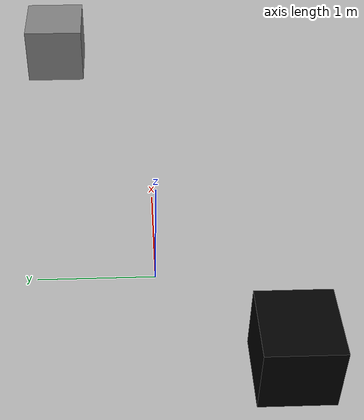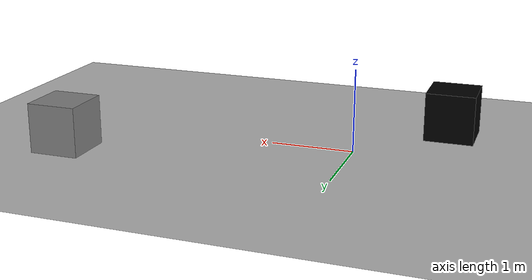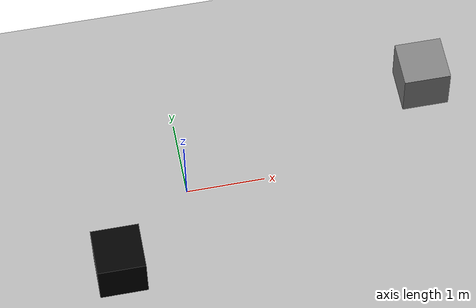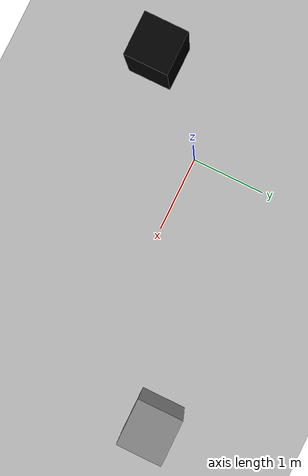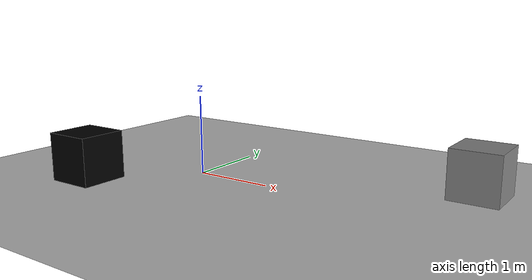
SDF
<sdf version='1.10'>
  <world name='empty_world'>
    <gravity>0 0 -9.8000000000000007</gravity>
    <magnetic_field>5.5644999999999998e-06 2.2875799999999999e-05 -4.2388400000000002e-05</magnetic_field>
    <atmosphere type='adiabatic'/>
    <physics type='ode'>
      <max_step_size>0.001</max_step_size>
      <real_time_factor>1</real_time_factor>
      <real_time_update_rate>1000</real_time_update_rate>
    </physics>
    <scene>
      <ambient>0.400000006 0.400000006 0.400000006 1</ambient>
      <background>0.699999988 0.699999988 0.699999988 1</background>
      <shadows>true</shadows>
    </scene>
    <model name='ground_plane'>
      <static>true</static>
      <link name='link'>
        <collision name='collision'>
          <geometry>
            <plane>
              <normal>0 0 1</normal>
              <size>100 100</size>
            </plane>
          </geometry>
          <surface>
            <friction>
              <ode>
                <mu>100</mu>
                <mu2>50</mu2>
              </ode>
            </friction>
            <bounce/>
            <contact/>
          </surface>
        </collision>
        <visual name='visual'>
          <cast_shadows>false</cast_shadows>
          <geometry>
            <plane>
              <normal>0 0 1</normal>
              <size>100 100</size>
            </plane>
          </geometry>
          <material>
            <ambient>0.300000012 0.300000012 0.300000012 1</ambient>
            <diffuse>0.699999988 0.699999988 0.699999988 1</diffuse>
            <specular>0.00999999978 0.00999999978 0.00999999978 1</specular>
          </material>
        </visual>
        <pose>0 0 0 0 0 0</pose>
        <inertial>
          <pose>0 0 0 0 0 0</pose>
          <mass>1</mass>
          <inertia>
            <ixx>1</ixx>
            <ixy>0</ixy>
            <ixz>0</ixz>
            <iyy>1</iyy>
            <iyz>0</iyz>
            <izz>1</izz>
          </inertia>
        </inertial>
        <enable_wind>false</enable_wind>
      </link>
      <pose>0 0 0 0 0 0</pose>
      <self_collide>false</self_collide>
    </model>
    <model name='black_box'>
      <pose>-1 -1 0.29999999999999999 0 0 0</pose>
      <static>true</static>
      <link name='link'>
        <collision name='collision'>
          <geometry>
            <box>
              <size>0.59999999999999998 0.59999999999999998 0.59999999999999998</size>
            </box>
          </geometry>
          <surface>
            <friction>
              <ode/>
            </friction>
            <bounce/>
            <contact/>
          </surface>
        </collision>
        <visual name='visual'>
          <geometry>
            <box>
              <size>0.59999999999999998 0.59999999999999998 0.59999999999999998</size>
            </box>
          </geometry>
          <material>
            <ambient>0 0 0 1</ambient>
            <diffuse>0 0 0 1</diffuse>
          </material>
        </visual>
        <pose>0 0 0 0 0 0</pose>
        <inertial>
          <pose>0 0 0 0 0 0</pose>
          <mass>1</mass>
          <inertia>
            <ixx>1</ixx>
            <ixy>0</ixy>
            <ixz>0</ixz>
            <iyy>1</iyy>
            <iyz>0</iyz>
            <izz>1</izz>
          </inertia>
        </inertial>
        <enable_wind>false</enable_wind>
      </link>
      <self_collide>false</self_collide>
    </model>
    <model name='gray_box'>
      <pose>3.2632296085357666 1 0.30000001192092896 0 0 0</pose>
      <static>true</static>
      <link name='link'>
        <collision name='collision'>
          <geometry>
            <box>
              <size>0.59999999999999998 0.59999999999999998 0.59999999999999998</size>
            </box>
          </geometry>
          <surface>
            <friction>
              <ode/>
            </friction>
            <bounce/>
            <contact/>
          </surface>
        </collision>
        <visual name='visual'>
          <geometry>
            <box>
              <size>0.59999999999999998 0.59999999999999998 0.59999999999999998</size>
            </box>
          </geometry>
          <material>
            <ambient>0.5 0.5 0.5 1</ambient>
            <diffuse>0.5 0.5 0.5 1</diffuse>
          </material>
        </visual>
        <pose>0 0 0 0 0 0</pose>
        <inertial>
          <pose>0 0 0 0 0 0</pose>
          <mass>1</mass>
          <inertia>
            <ixx>1</ixx>
            <ixy>0</ixy>
            <ixz>0</ixz>
            <iyy>1</iyy>
            <iyz>0</iyz>
            <izz>1</izz>
          </inertia>
        </inertial>
        <enable_wind>false</enable_wind>
      </link>
      <self_collide>false</self_collide>
    </model>
    <light name='sun' type='directional'>
      <pose>0 0 0 0 0 0</pose>
      <cast_shadows>true</cast_shadows>
      <intensity>1</intensity>
      <direction>-0.5 0.10000000000000001 -0.90000000000000002</direction>
      <diffuse>0.800000012 0.800000012 0.800000012 1</diffuse>
      <specular>0.200000003 0.200000003 0.200000003 1</specular>
      <attenuation>
        <range>1000</range>
        <linear>0.01</linear>
        <constant>0.90000000000000002</constant>
        <quadratic>0.001</quadratic>
      </attenuation>
      <spot>
        <inner_angle>0</inner_angle>
        <outer_angle>0</outer_angle>
        <falloff>0</falloff>
      </spot>
    </light>
  </world>
</sdf>
